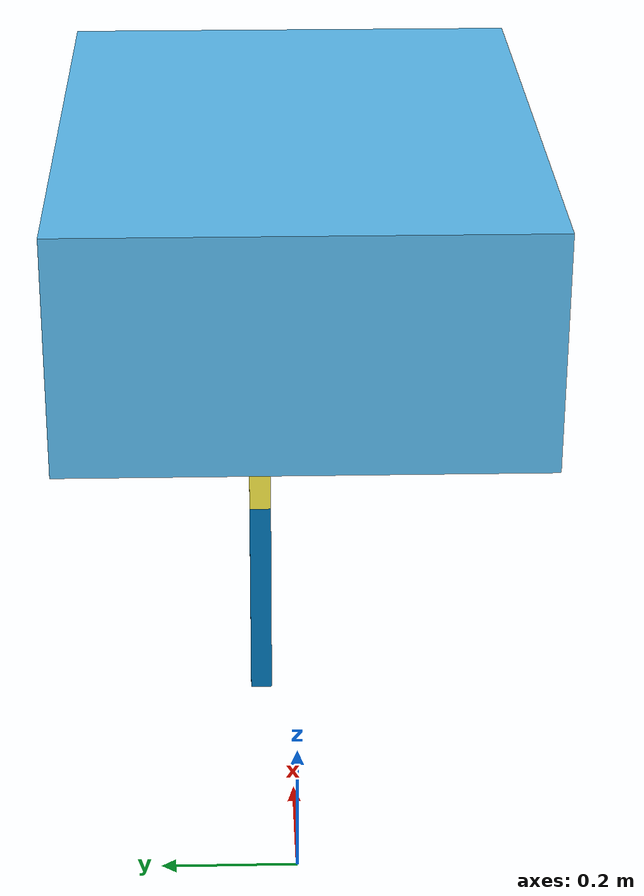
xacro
<?xml version="1.0"?>
<robot xmlns:xacro="http://www.ros.org/wiki/xacro"  name="robot">

    <!--xacro:arg name="use_ros2_control" default="true"/-->
    <xacro:arg name="sim_mode" default="false"/>
     <!-- Import Inertia Macros -->
    <xacro:include filename="inertial_macros.xacro"/>
    <!-- Import Constants -->
    <xacro:include filename="rrr_manipulator_constants.xacro"/>

    <!-- WORLD LINK -->
    <link name = "world"></link>

    <!-- BODY JOINT AND LINK -->
    <joint name="body_joint" type="fixed">
        <origin xyz="0.0 0.0 ${body_link_height}" rpy="0.0 0.0 0.0"/>
        <parent link="world"/>
        <child link="body_link"/>
    </joint>

    <link name="body_link">
        <visual>
            <origin xyz="0.0 0.0 0.0" rpy="0.0 0.0 0.0"/>
            <geometry>
                <box size="${body_link_x_dim} ${body_link_y_dim} ${body_link_z_dim}"/>
            </geometry>
        </visual>
        <collision>
            <origin xyz="0.0 0.0 0.0" rpy="0.0 0.0 0.0"/>
            <geometry>
                <box size="${body_link_x_dim} ${body_link_y_dim} ${body_link_z_dim}"/>
            </geometry>
        </collision>
        <xacro:inertial_box mass="${body_link_mass}" x="${body_link_x_dim}" y ="${body_link_y_dim}" z="${body_link_z_dim}">
            <origin xyz="0.0 0 0.0"/>
        </xacro:inertial_box>
    </link>

    <!-- COXA JOINT AND LINK-->
    <joint name="coxa_joint" type="revolute">
        <origin xyz="${Ox} ${Oy} ${Oz}" rpy="0.0 0.0 0.0"/>
        <parent link="body_link"/>
        <child link="coxa_link"/>
        <limit effort="100" velocity="100.0" lower="-3.14" upper="3.14" />
        <axis xyz="0 0 1"/>
        <dynamics damping="0.7"/>
    </joint>

    <link name="coxa_link">
        <visual>
            <origin xyz="${coxa_link_Ox} ${coxa_link_Oy} ${coxa_link_Oz}" rpy="0.0 ${coxa_link_Ry} 0.0"/>
            <geometry>
                <cylinder length="${coxa_link_length}" radius="${coxa_link_radius}"/>
            </geometry>
        </visual>
        <collision>
            <origin xyz="${coxa_link_Ox} ${coxa_link_Oy} ${coxa_link_Oz}" rpy="0.0 ${coxa_link_Ry} 0.0"/>
            <geometry>
                <cylinder length="${coxa_link_length}" radius="${coxa_link_radius}"/>
            </geometry>
        </collision>
        <xacro:inertial_cylinder mass="${coxa_link_mass}" length="${coxa_link_length}" radius="${coxa_link_radius}">
            <origin xyz="${coxa_link_Ox} ${coxa_link_Oy} ${coxa_link_Oz}" rpy="0.0 ${coxa_link_Ry} 0.0"/>
        </xacro:inertial_cylinder>
    </link>

    <!-- FEMUR JOINT AND LINK-->
    <joint name="femur_joint" type="revolute">
        <origin xyz="${femur_joint_Ox} ${femur_joint_Oy} ${femur_joint_Oz}" rpy="0.0 ${femur_joint_Ry} 0.0"/>
        <parent link="coxa_link"/>
        <child link="femur_link"/>
        <limit effort="100" velocity="100.0" lower="-3.14" upper="3.14" />
        <axis xyz="0 0 1"/>
        <dynamics damping="0.7"/>
    </joint>

    <link name="femur_link">
        <visual>
            <origin xyz="${femur_link_Ox} 0.0 0.0" rpy="0.0 0.0 0.0"/>
            <geometry>
                <box size="${femur_link_dx} ${femur_link_dy} ${femur_link_dz}"/>
            </geometry>
        </visual>
        <collision>
            <origin xyz="${femur_link_Ox} 0.0 0.0" rpy="0.0 0.0 0.0"/>
            <geometry>
                <box size="${femur_link_dx} ${femur_link_dy} ${femur_link_dz}"/>
            </geometry>
        </collision>
        <xacro:inertial_box mass="${femur_link_mass}" x="${femur_link_dx}" y="${femur_link_dy}" z='${femur_link_dz}'>
            <origin xyz="${femur_link_Ox} 0.0 0.0" rpy="0.0 0.0 0.0"/>
        </xacro:inertial_box>
    </link>

    <!-- TIBIA JOINT AND LINK -->
    <joint name="tibia_joint" type="revolute">
        <origin xyz="${tibia_joint_Ox} ${tibia_joint_Oy} ${tibia_joint_Oz}" rpy="0.0 0.0 0.0"/>
        <parent link="femur_link"/>
        <child link="tibia_link"/>
        <limit effort="100" velocity="100.0" lower="-3.14" upper="3.14" />
        <axis xyz="0 0 1"/>
        <dynamics damping="0.7"/>
    </joint>

    <link name="tibia_link">
        <visual>
            <origin xyz="${tibia_link_Ox} 0.0 0.0" rpy="0.0 0.0 0.0"/>
            <geometry>
                <box size="${tibia_link_dx} ${tibia_link_dy} ${tibia_link_dz}"/>
            </geometry>
        </visual>
        <collision>
            <origin xyz="${tibia_link_Ox} 0.0 0.0" rpy="0.0 0.0 0.0"/>
            <geometry>
                <box size="${tibia_link_dx} ${tibia_link_dy} ${tibia_link_dz}"/>
            </geometry>
        </collision>
        <xacro:inertial_box mass="${tibia_link_mass}" x="${tibia_link_dx}" y="${tibia_link_dy}" z="${tibia_link_dz}">
            <origin xyz="${tibia_link_Ox} 0.0 0.0" rpy="0.0 0.0 0.0"/>
        </xacro:inertial_box>
    </link>

    <!-- ROS2-CONTROL SETTINGS -->
    <ros2_control name="SilverSystem" type="system">
        <xacro:if value="$(arg sim_mode)">
            <hardware>
                <plugin>gazebo_ros2_control/GazeboSystem</plugin>
            </hardware>
        </xacro:if>
        <xacro:unless value="$(arg sim_mode)">
            <hardware>
                <plugin>dynamixel_hardware/DynamixelHardware</plugin>
                <param name="usb_port">/dev/ttyUSB0</param>
                <param name="baud_rate">1000000</param>
            </hardware>
        </xacro:unless>

        <!-- COXA JOINT ROS2-CONTROL PAREMETERS -->
        <joint name="coxa_joint">
        <param name="id">0</param>

            <command_interface name="position">
                <param name="min">-3.14</param>
                <param name="max">3.14</param>
            </command_interface>

            <command_interface name="velocity"/>

            <xacro:if value="$(arg sim_mode)">
                <command_interface name="effort"/>
            </xacro:if>

            <state_interface name="position"/>
            <state_interface name="velocity"/>
            <state_interface name="effort"/>
        </joint>

        <!-- FEMUR JOINT ROS2-CONTROL PAREMETERS -->
        <joint name="femur_joint">
        <param name="id">1</param>

            <command_interface name="position">
                <param name="min">-3.14</param>
                <param name="max">3.14</param>
            </command_interface>

            <command_interface name="velocity"/>

            <xacro:if value="$(arg sim_mode)">
                <command_interface name="effort"/>
            </xacro:if>

            <state_interface name="position"/>
            <state_interface name="velocity"/>
            <state_interface name="effort"/>
        </joint>

        <!-- TIBIA JOINT ROS2-CONTROL PAREMETERS -->
        <joint name="tibia_joint">
        <param name="id">2</param>

            <command_interface name="position">
                <param name="min">-3.14</param>
                <param name="max">3.14</param>
            </command_interface>

            <command_interface name="velocity"/>

            <xacro:if value="$(arg sim_mode)">
                <command_interface name="effort"/>
            </xacro:if>

            <state_interface name="position"/>
            <state_interface name="velocity"/>
            <state_interface name="effort"/>
        </joint>

        <!-- COXA JOINT ROS2-CONTROL TRANSMISSION -->
        <transmission name="coxa_transmission">
            <plugin>transmission_interface/SimpleTransmission</plugin>
            <actuator name="coxa_actuator" role="coxa_actuator"/>
            <joint name="coxa_joint" role="coxa_joint">
                <mechanical_reduction>${coxa_reduction}</mechanical_reduction>
                <offset>${coxa_offset}</offset>
            </joint>
        </transmission>

            <!-- FEMUR JOINT ROS2-CONTROL TRANSMISSION -->
        <transmission name="femur_transmission">
            <plugin>transmission_interface/SimpleTransmission</plugin>
            <actuator name="femur_actuator" role="femur_actuator"/>
            <joint name="femur_joint" role="fermur_joint">
                <mechanical_reduction>${femur_reduction}</mechanical_reduction>
                <offset>${femur_offset}</offset>
            </joint>
        </transmission>

            <!-- TIBIA JOINT ROS2-CONTROL TRANSMISSION -->
        <transmission name="tibia_transmission">
            <plugin>transmission_interface/SimpleTransmission</plugin>
            <actuator name="tibia_actuator" role="tibia_actuator"/>
            <joint name="tibia_joint" role="tibia_joint">
                <mechanical_reduction>${tibia_reduction}</mechanical_reduction>
                <offset>${tibia_offset}</offset>
            </joint>
        </transmission>
    </ros2_control>
</robot>

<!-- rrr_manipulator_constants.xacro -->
<robot xmlns:xacro="http://www.ros.org/wiki/xacro" >

    <!-- Constant parameters -->
    <xacro:property name="Ox" value="0.0" />
    <xacro:property name="Oy" value="0.0" />
    <xacro:property name="Oz" value="0.0" />

    <xacro:property name="coxa_offset" value="0.35" />
    <xacro:property name="coxa_reduction" value="-1.0" />
    <xacro:property name="femur_offset" value="-0.3" />
    <xacro:property name="femur_reduction" value="-1.0" />
    <xacro:property name="tibia_offset" value="-0.55" />
    <xacro:property name="tibia_reduction" value="1.0" />

    <xacro:property name="body_link_mass" value="2.0" /> <!-- Kg -->
    <xacro:property name="body_link_height" value="1.0" />
    <xacro:property name="body_link_x_dim" value="0.8" />
    <xacro:property name="body_link_y_dim" value="0.6" />
    <xacro:property name="body_link_z_dim" value="0.3" />

    <xacro:property name="coxa_link_mass" value="0.5" /> <!-- Kg -->
    <xacro:property name="coxa_joint_Ox" value="0.0" />
    <xacro:property name="coxa_joint_Oy" value="0.0" />
    <xacro:property name="coxa_joint_Oz" value="0.0" />
    <xacro:property name="coxa_link_Ox" value="0.03" />
    <xacro:property name="coxa_link_Oy" value="0.05" />
    <xacro:property name="coxa_link_Oz" value="-0.05" />
    <xacro:property name="coxa_link_Ry" value="1.57" /> <!-- rad -->
    <xacro:property name="coxa_link_length" value="0.1" />
    <xacro:property name="coxa_link_radius" value="0.05" />

    <xacro:property name="femur_link_mass" value="0.5" /> <!-- Kg -->
    <xacro:property name="femur_joint_Ox" value="0.09" />
    <xacro:property name="femur_joint_Oy" value="0.05" />
    <xacro:property name="femur_joint_Oz" value="-0.05" />
    <xacro:property name="femur_joint_Ry" value="1.57" /> <!-- rad -->
    <xacro:property name="femur_link_Ox" value="0.2" />
    <xacro:property name="femur_link_Oy" value="0.05" />
    <xacro:property name="femur_link_Oz" value="-0.05" />
    <xacro:property name="femur_link_dx" value="0.4" />
    <xacro:property name="femur_link_dy" value="0.03" />
    <xacro:property name="femur_link_dz" value="0.01" />

    <xacro:property name="tibia_link_mass" value="0.5" /> <!-- Kg -->
    <xacro:property name="tibia_joint_Ox" value="0.4" />
    <xacro:property name="tibia_joint_Oy" value="0.0" />
    <xacro:property name="tibia_joint_Oz" value="0.01" />
    <xacro:property name="tibia_link_Ox" value="0.15" />
    <xacro:property name="tibia_link_Oy" value="0.0" />
    <xacro:property name="tibia_link_Oz" value="0.0" />
    <xacro:property name="tibia_link_dx" value="0.3" />
    <xacro:property name="tibia_link_dy" value="0.03" />
    <xacro:property name="tibia_link_dz" value="0.01" />

    <xacro:property name="foot_link_mass" value="0.1" /> <!-- Kg -->
    <xacro:property name="foot_joint_Ox" value="0.3" />
    <xacro:property name="foot_joint_Oy" value="0.0" />
    <xacro:property name="foot_joint_Oz" value="0.0" />
    <xacro:property name="foot_joint_Rz" value="-0.785" /> <!-- rad -->
    <xacro:property name="foot_link_Ox" value="0.01" />
    <xacro:property name="foot_link_Oy" value="0.0" />
    <xacro:property name="foot_link_Oz" value="0.0" />
    <xacro:property name="foot_link_dx" value="0.05" />
    <xacro:property name="foot_link_dy" value="0.01" />
    <xacro:property name="foot_link_dz" value="0.01" />

    <xacro:property name="coxa_offset_0" value="-0.23" /> <!-- rad -->
    <xacro:property name="femur_offset_0" value="-0.10" /> <!-- rad -->
    <xacro:property name="tibia_offset_0" value="1.85" /> <!-- rad -->
    <xacro:property name="coxa_offset_1" value="0.0" /> <!-- rad -->
    <xacro:property name="femur_offset_1" value="0.0" /> <!-- rad -->
    <xacro:property name="tibia_offset_1" value="0.0" /> <!-- rad -->
    <xacro:property name="coxa_offset_2" value="0.0" /> <!-- rad -->
    <xacro:property name="femur_offset_2" value="0.0" /> <!-- rad -->
    <xacro:property name="tibia_offset_2" value="0.0" /> <!-- rad -->
    <xacro:property name="coxa_offset_3" value="0.0" /> <!-- rad -->
    <xacro:property name="femur_offset_3" value="0.0" /> <!-- rad -->
    <xacro:property name="tibia_offset_3" value="0.0" /> <!-- rad -->
    <xacro:property name="coxa_offset_4" value="0.0" /> <!-- rad -->
    <xacro:property name="femur_offset_4" value="0.0" /> <!-- rad -->
    <xacro:property name="tibia_offset_4" value="0.0" /> <!-- rad -->
    <xacro:property name="coxa_offset_5" value="0.0" /> <!-- rad -->
    <xacro:property name="femur_offset_5" value="0.0" /> <!-- rad -->
    <xacro:property name="tibia_offset_5" value="0.0" /> <!-- rad -->

    <xacro:property name="coxa_reduction_0" value="1.0" /> <!-- rad -->
    <xacro:property name="femur_reduction_0" value="-1.0" /> <!-- rad -->
    <xacro:property name="tibia_reduction_0" value="1.0" /> <!-- rad -->
    <xacro:property name="coxa_reduction_1" value="1.0" /> <!-- rad -->
    <xacro:property name="femur_reduction_1" value="1.0" /> <!-- rad -->
    <xacro:property name="tibia_reduction_1" value="1.0" /> <!-- rad -->
    <xacro:property name="coxa_reduction_2" value="1.0" /> <!-- rad -->
    <xacro:property name="femur_reduction_2" value="1.0" /> <!-- rad -->
    <xacro:property name="tibia_reduction_2" value="1.0" /> <!-- rad -->
    <xacro:property name="coxa_reduction_3" value="1.0" /> <!-- rad -->
    <xacro:property name="femur_reduction_3" value="1.0" /> <!-- rad -->
    <xacro:property name="tibia_reduction_3" value="1.0" /> <!-- rad -->
    <xacro:property name="coxa_reduction_4" value="1.0" /> <!-- rad -->
    <xacro:property name="femur_reduction_4" value="1.0" /> <!-- rad -->
    <xacro:property name="tibia_reduction_4" value="1.0" /> <!-- rad -->
    <xacro:property name="coxa_reduction_5" value="1.0" /> <!-- rad -->
    <xacro:property name="femur_reduction_5" value="1.0" /> <!-- rad -->
    <xacro:property name="tibia_reduction_5" value="1.0" /> <!-- rad -->

</robot>
